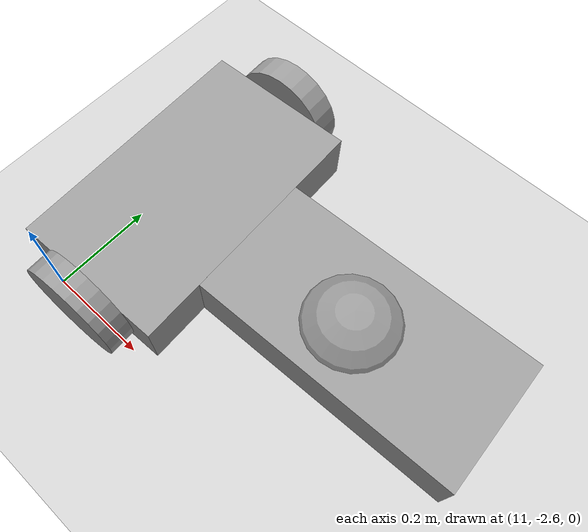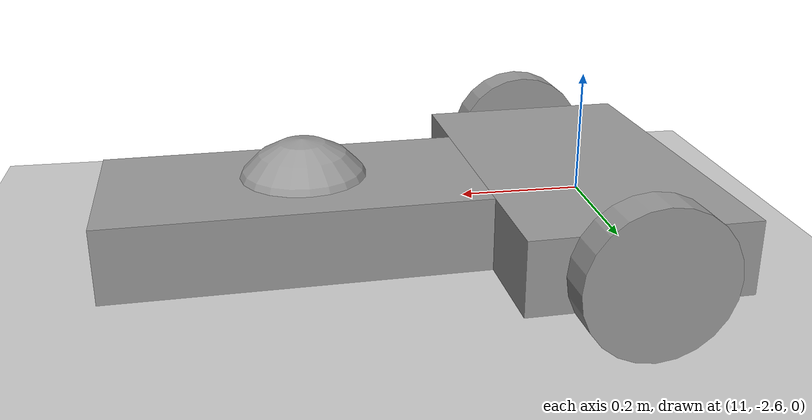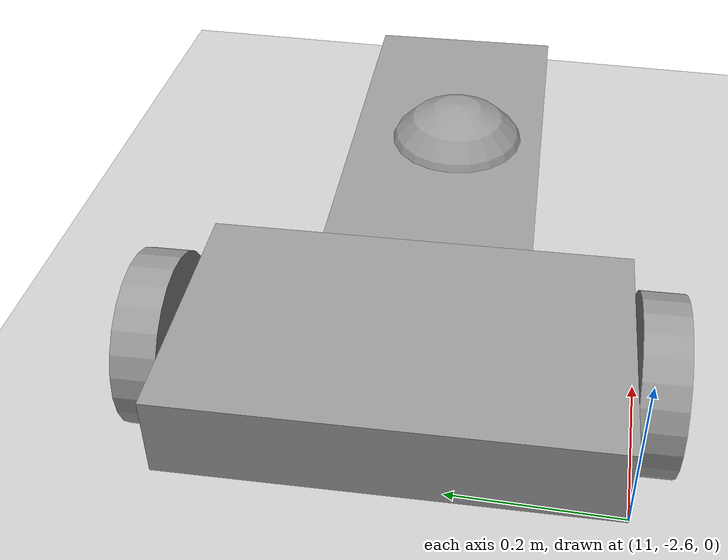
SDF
<sdf version="1.6">
 <world name="default">
  <model name="ground_plane">
   <static>1</static>
   <link name="link">
    <collision name="collision">
     <geometry><plane><normal>0 0 1</normal><size>100 100</size></plane></geometry>
     <surface>
      <contact><collide_bitmask>65535</collide_bitmask></contact>
      <friction><ode><mu>100</mu><mu2>50</mu2></ode></friction>
     </surface>
    </collision>
    <visual name="visual">
     <cast_shadows>0</cast_shadows>
     <geometry><plane><normal>0 0 1</normal><size>100 100</size></plane></geometry>
     <material>
      <script><uri>file://media/materials/scripts/gazebo.material</uri><name>Gazebo/Grey</name></script>
     </material>
    </visual>
   </link>
  </model>
  <model name="Robot_0">
   <link name="link_3">
    <pose>-0.156001 0.0055 0 0 -0 0</pose>
    <inertial>
     <mass>1</mass>
     <inertia>
      <ixx>0.166667</ixx>
      <ixy>0</ixy>
      <ixz>0</ixz>
      <iyy>0.166667</iyy>
      <iyz>0</iyz>
      <izz>0.166667</izz>
     </inertia>
    </inertial>
    <visual name="visual">
     <geometry><box><size>0.3 0.5 0.1</size></box></geometry>
     <material>
      <lighting>1</lighting>
      <script><uri>file://media/materials/scripts/gazebo.material</uri><name>Gazebo/Grey</name></script>
      <shader type="pixel"><normal_map>__default__</normal_map></shader>
      <ambient>0.3 0.3 0.3 1</ambient>
      <diffuse>0.7 0.7 0.7 1</diffuse>
      <specular>0.01 0.01 0.01 1</specular>
      <emissive>0 0 0 1</emissive>
     </material>
    </visual>
    <collision name="collision">
     <geometry><box><size>0.3 0.5 0.1</size></box></geometry>
     <surface>
      <friction>
       <ode><mu>1</mu><mu2>1</mu2><fdir1>0 0 0</fdir1><slip1>0</slip1><slip2>0</slip2></ode>
       <torsional>
        <coefficient>1</coefficient>
        <patch_radius>0</patch_radius>
        <surface_radius>0</surface_radius>
        <use_patch_radius>1</use_patch_radius>
        <ode><slip>0</slip></ode>
       </torsional>
      </friction>
      <bounce><restitution_coefficient>0</restitution_coefficient><threshold>1e+06</threshold></bounce>
      <contact>
       <collide_without_contact>0</collide_without_contact>
       <collide_without_contact_bitmask>1</collide_without_contact_bitmask>
       <collide_bitmask>1</collide_bitmask>
       <ode>
        <soft_cfm>0</soft_cfm>
        <soft_erp>0.2</soft_erp>
        <kp>1e+13</kp>
        <kd>1</kd>
        <max_vel>0.01</max_vel>
        <min_depth>0</min_depth>
       </ode>
       <bullet>
        <split_impulse>1</split_impulse>
        <split_impulse_penetration_threshold>-0.01</split_impulse_penetration_threshold>
        <soft_cfm>0</soft_cfm>
        <soft_erp>0.2</soft_erp>
        <kp>1e+13</kp>
        <kd>1</kd>
       </bullet>
      </contact>
     </surface>
    </collision>
   </link>
   <link name="link_4_clone">
    <pose>-0.156001 -0.26951 0 1.5707 -0 0</pose>
    <inertial>
     <mass>1</mass>
     <inertia><ixx>0.145833</ixx><ixy>0</ixy><ixz>0</ixz><iyy>0.145833</iyy><iyz>0</iyz><izz>0.125</izz></inertia>
    </inertial>
    <visual name="visual">
     <geometry><cylinder><radius>0.1</radius><length>0.05</length></cylinder></geometry>
     <material>
      <lighting>1</lighting>
      <script><uri>file://media/materials/scripts/gazebo.material</uri><name>Gazebo/Grey</name></script>
      <shader type="pixel"><normal_map>__default__</normal_map></shader>
      <ambient>0.3 0.3 0.3 1</ambient>
      <diffuse>0.7 0.7 0.7 1</diffuse>
      <specular>0.01 0.01 0.01 1</specular>
      <emissive>0 0 0 1</emissive>
     </material>
    </visual>
    <collision name="collision">
     <geometry><cylinder><radius>0.1</radius><length>0.05</length></cylinder></geometry>
     <surface>
      <friction>
       <ode><mu>1</mu><mu2>1</mu2><fdir1>0 0 0</fdir1><slip1>0</slip1><slip2>0</slip2></ode>
       <torsional>
        <coefficient>1</coefficient>
        <patch_radius>0</patch_radius>
        <surface_radius>0</surface_radius>
        <use_patch_radius>1</use_patch_radius>
        <ode><slip>0</slip></ode>
       </torsional>
      </friction>
      <bounce><restitution_coefficient>0</restitution_coefficient><threshold>1e+06</threshold></bounce>
      <contact>
       <collide_without_contact>0</collide_without_contact>
       <collide_without_contact_bitmask>1</collide_without_contact_bitmask>
       <collide_bitmask>1</collide_bitmask>
       <ode>
        <soft_cfm>0</soft_cfm>
        <soft_erp>0.2</soft_erp>
        <kp>1e+13</kp>
        <kd>1</kd>
        <max_vel>0.01</max_vel>
        <min_depth>0</min_depth>
       </ode>
       <bullet>
        <split_impulse>1</split_impulse>
        <split_impulse_penetration_threshold>-0.01</split_impulse_penetration_threshold>
        <soft_cfm>0</soft_cfm>
        <soft_erp>0.2</soft_erp>
        <kp>1e+13</kp>
        <kd>1</kd>
       </bullet>
      </contact>
     </surface>
    </collision>
   </link>
   <link name="link_4_clone_clone">
    <pose>-0.156001 0.28051 0 1.5707 -0 0</pose>
    <inertial>
     <mass>1</mass>
     <inertia><ixx>0.145833</ixx><ixy>0</ixy><ixz>0</ixz><iyy>0.145833</iyy><iyz>0</iyz><izz>0.125</izz></inertia>
    </inertial>
    <visual name="visual">
     <geometry><cylinder><radius>0.1</radius><length>0.05</length></cylinder></geometry>
     <material>
      <lighting>1</lighting>
      <script><uri>file://media/materials/scripts/gazebo.material</uri><name>Gazebo/Grey</name></script>
      <shader type="pixel"><normal_map>__default__</normal_map></shader>
      <ambient>0.3 0.3 0.3 1</ambient>
      <diffuse>0.7 0.7 0.7 1</diffuse>
      <specular>0.01 0.01 0.01 1</specular>
      <emissive>0 0 0 1</emissive>
     </material>
    </visual>
    <collision name="collision">
     <geometry><cylinder><radius>0.1</radius><length>0.05</length></cylinder></geometry>
     <surface>
      <friction>
       <ode><mu>1</mu><mu2>1</mu2><fdir1>0 0 0</fdir1><slip1>0</slip1><slip2>0</slip2></ode>
       <torsional>
        <coefficient>1</coefficient>
        <patch_radius>0</patch_radius>
        <surface_radius>0</surface_radius>
        <use_patch_radius>1</use_patch_radius>
        <ode><slip>0</slip></ode>
       </torsional>
      </friction>
      <bounce><restitution_coefficient>0</restitution_coefficient><threshold>1e+06</threshold></bounce>
      <contact>
       <collide_without_contact>0</collide_without_contact>
       <collide_without_contact_bitmask>1</collide_without_contact_bitmask>
       <collide_bitmask>1</collide_bitmask>
       <ode>
        <soft_cfm>0</soft_cfm>
        <soft_erp>0.2</soft_erp>
        <kp>1e+13</kp>
        <kd>1</kd>
        <max_vel>0.01</max_vel>
        <min_depth>0</min_depth>
       </ode>
       <bullet>
        <split_impulse>1</split_impulse>
        <split_impulse_penetration_threshold>-0.01</split_impulse_penetration_threshold>
        <soft_cfm>0</soft_cfm>
        <soft_erp>0.2</soft_erp>
        <kp>1e+13</kp>
        <kd>1</kd>
       </bullet>
      </contact>
     </surface>
    </collision>
   </link>
   <link name="link_5">
    <pose>0.244001 -0.002 0 0 -0 0</pose>
    <inertial>
     <mass>1</mass>
     <inertia>
      <ixx>0.166667</ixx>
      <ixy>0</ixy>
      <ixz>0</ixz>
      <iyy>0.166667</iyy>
      <iyz>0</iyz>
      <izz>0.166667</izz>
     </inertia>
    </inertial>
    <visual name="visual">
     <geometry><box><size>0.5 0.25 0.1</size></box></geometry>
     <material>
      <lighting>1</lighting>
      <script><uri>file://media/materials/scripts/gazebo.material</uri><name>Gazebo/Grey</name></script>
      <shader type="pixel"><normal_map>__default__</normal_map></shader>
      <ambient>0.3 0.3 0.3 1</ambient>
      <diffuse>0.7 0.7 0.7 1</diffuse>
      <specular>0.01 0.01 0.01 1</specular>
      <emissive>0 0 0 1</emissive>
     </material>
    </visual>
    <collision name="collision">
     <geometry><box><size>0.5 0.25 0.1</size></box></geometry>
     <surface>
      <friction>
       <ode><mu>1</mu><mu2>1</mu2><fdir1>0 0 0</fdir1><slip1>0</slip1><slip2>0</slip2></ode>
       <torsional>
        <coefficient>1</coefficient>
        <patch_radius>0</patch_radius>
        <surface_radius>0</surface_radius>
        <use_patch_radius>1</use_patch_radius>
        <ode><slip>0</slip></ode>
       </torsional>
      </friction>
      <bounce><restitution_coefficient>0</restitution_coefficient><threshold>1e+06</threshold></bounce>
      <contact>
       <collide_without_contact>0</collide_without_contact>
       <collide_without_contact_bitmask>1</collide_without_contact_bitmask>
       <collide_bitmask>1</collide_bitmask>
       <ode>
        <soft_cfm>0</soft_cfm>
        <soft_erp>0.2</soft_erp>
        <kp>1e+13</kp>
        <kd>1</kd>
        <max_vel>0.01</max_vel>
        <min_depth>0</min_depth>
       </ode>
       <bullet>
        <split_impulse>1</split_impulse>
        <split_impulse_penetration_threshold>-0.01</split_impulse_penetration_threshold>
        <soft_cfm>0</soft_cfm>
        <soft_erp>0.2</soft_erp>
        <kp>1e+13</kp>
        <kd>1</kd>
       </bullet>
      </contact>
     </surface>
    </collision>
   </link>
   <link name="link_7">
    <pose>0.224001 -0.0145 0 0 -0 0</pose>
    <inertial>
     <mass>1</mass>
     <inertia><ixx>0.1</ixx><ixy>0</ixy><ixz>0</ixz><iyy>0.1</iyy><iyz>0</iyz><izz>0.1</izz></inertia>
    </inertial>
    <visual name="visual">
     <geometry><sphere><radius>0.1</radius></sphere></geometry>
     <material>
      <lighting>1</lighting>
      <script><uri>file://media/materials/scripts/gazebo.material</uri><name>Gazebo/Grey</name></script>
      <shader type="pixel"><normal_map>__default__</normal_map></shader>
      <ambient>0.3 0.3 0.3 1</ambient>
      <diffuse>0.7 0.7 0.7 1</diffuse>
      <specular>0.01 0.01 0.01 1</specular>
      <emissive>0 0 0 1</emissive>
     </material>
    </visual>
    <collision name="collision">
     <geometry><sphere><radius>0.1</radius></sphere></geometry>
     <surface>
      <friction>
       <ode><mu>1</mu><mu2>1</mu2><fdir1>0 0 0</fdir1><slip1>0</slip1><slip2>0</slip2></ode>
       <torsional>
        <coefficient>1</coefficient>
        <patch_radius>0</patch_radius>
        <surface_radius>0</surface_radius>
        <use_patch_radius>1</use_patch_radius>
        <ode><slip>0</slip></ode>
       </torsional>
      </friction>
      <bounce><restitution_coefficient>0</restitution_coefficient><threshold>1e+06</threshold></bounce>
      <contact>
       <collide_without_contact>0</collide_without_contact>
       <collide_without_contact_bitmask>1</collide_without_contact_bitmask>
       <collide_bitmask>1</collide_bitmask>
       <ode>
        <soft_cfm>0</soft_cfm>
        <soft_erp>0.2</soft_erp>
        <kp>1e+13</kp>
        <kd>1</kd>
        <max_vel>0.01</max_vel>
        <min_depth>0</min_depth>
       </ode>
       <bullet>
        <split_impulse>1</split_impulse>
        <split_impulse_penetration_threshold>-0.01</split_impulse_penetration_threshold>
        <soft_cfm>0</soft_cfm>
        <soft_erp>0.2</soft_erp>
        <kp>1e+13</kp>
        <kd>1</kd>
       </bullet>
      </contact>
     </surface>
    </collision>
   </link>
   <joint name="link_3_JOINT_5" type="revolute">
    <parent>link_3</parent>
    <child>link_4_clone</child>
    <axis>
     <xyz>0 1 0</xyz>
     <use_parent_model_frame>0</use_parent_model_frame>
     <limit>
      <lower>-1.79769e+308</lower>
      <upper>1.79769e+308</upper>
      <effort>-1</effort>
      <velocity>-1</velocity>
     </limit>
     <dynamics>
      <spring_reference>0</spring_reference>
      <spring_stiffness>0</spring_stiffness>
      <damping>0</damping>
      <friction>0</friction>
     </dynamics>
    </axis>
    <physics>
     <ode><limit><cfm>0</cfm><erp>0.2</erp></limit><suspension><cfm>0</cfm><erp>0.2</erp></suspension></ode>
    </physics>
   </joint>
   <joint name="link_3_JOINT_6" type="revolute">
    <parent>link_3</parent>
    <child>link_4_clone_clone</child>
    <axis>
     <xyz>0 1 0</xyz>
     <use_parent_model_frame>0</use_parent_model_frame>
     <limit>
      <lower>-1.79769e+308</lower>
      <upper>1.79769e+308</upper>
      <effort>-1</effort>
      <velocity>-1</velocity>
     </limit>
     <dynamics>
      <spring_reference>0</spring_reference>
      <spring_stiffness>0</spring_stiffness>
      <damping>0</damping>
     </dynamics>
    </axis>
    <physics>
     <ode><limit><cfm>0</cfm><erp>0.2</erp></limit><suspension><cfm>0</cfm><erp>0.2</erp></suspension></ode>
    </physics>
   </joint>
   <joint name="link_3_JOINT_7" type="fixed">
    <parent>link_3</parent>
    <child>link_5</child>
    <physics>
     <ode><limit><cfm>0</cfm><erp>0.2</erp></limit><suspension><cfm>0</cfm><erp>0.2</erp></suspension></ode>
    </physics>
   </joint>
   <joint name="link_5_JOINT_16" type="ball">
    <parent>link_5</parent>
    <child>link_7</child>
    <physics>
     <ode><limit><cfm>0</cfm><erp>0.2</erp></limit><suspension><cfm>0</cfm><erp>0.2</erp></suspension></ode>
    </physics>
   </joint>
   <static>0</static>
   <pose>11.2536 -2.33841 0.1 -5e-06 7e-06 0.037821</pose>
  </model>
 </world>
</sdf>
